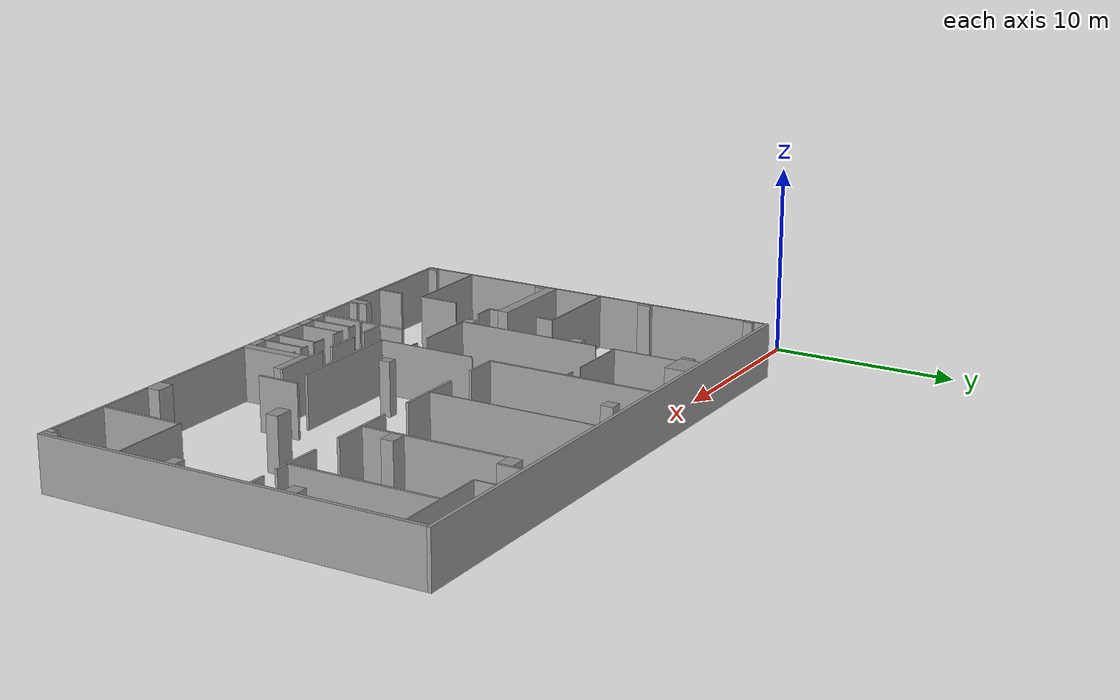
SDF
<?xml version="1.0" ?>
<sdf version="1.4">
  <model name="PalOfficePujades">
    <static>1</static>
    <link name="Wall_0">
      <collision name="Wall_0_Collision">
        <geometry>
          <box>
            <size>32.97000 0.21000 3.00000</size>
          </box>
        </geometry>
        <pose>16.90500 -0.45500 0 0 0 0.00000</pose>
      </collision>
      <visual name="Wall_0_Visual">
        <geometry>
          <box>
            <size>32.97000 0.21000 3.00000</size>
          </box>
        </geometry>
        <material>
          <script>
            <uri>file://media/materials/scripts/gazebo.material</uri>
            <name>Gazebo/Grey</name>
          </script>
        </material>
        <pose>16.90500 -0.45500 0 0 0 0.00000</pose>
      </visual>
    </link>
    <link name="Wall_1">
      <collision name="Wall_1_Collision">
        <geometry>
          <box>
            <size>0.14000 21.70000 3.00000</size>
          </box>
        </geometry>
        <pose>0.49000 -11.41000 0 0 0 0.00000</pose>
      </collision>
      <visual name="Wall_1_Visual">
        <geometry>
          <box>
            <size>0.14000 21.70000 3.00000</size>
          </box>
        </geometry>
        <material>
          <script>
            <uri>file://media/materials/scripts/gazebo.material</uri>
            <name>Gazebo/Grey</name>
          </script>
        </material>
        <pose>0.49000 -11.41000 0 0 0 0.00000</pose>
      </visual>
    </link>
    <link name="Wall_2">
      <collision name="Wall_2_Collision">
        <geometry>
          <box>
            <size>1.75000 1.19000 3.00000</size>
          </box>
        </geometry>
        <pose>8.99500 -1.15500 0 0 0 0.00000</pose>
      </collision>
      <visual name="Wall_2_Visual">
        <geometry>
          <box>
            <size>1.75000 1.19000 3.00000</size>
          </box>
        </geometry>
        <material>
          <script>
            <uri>file://media/materials/scripts/gazebo.material</uri>
            <name>Gazebo/Grey</name>
          </script>
        </material>
        <pose>8.99500 -1.15500 0 0 0 0.00000</pose>
      </visual>
    </link>
    <link name="Wall_3">
      <collision name="Wall_3_Collision">
        <geometry>
          <box>
            <size>0.14000 9.45000 3.00000</size>
          </box>
        </geometry>
        <pose>13.44000 -5.28500 0 0 0 0.00000</pose>
      </collision>
      <visual name="Wall_3_Visual">
        <geometry>
          <box>
            <size>0.14000 9.45000 3.00000</size>
          </box>
        </geometry>
        <material>
          <script>
            <uri>file://media/materials/scripts/gazebo.material</uri>
            <name>Gazebo/Grey</name>
          </script>
        </material>
        <pose>13.44000 -5.28500 0 0 0 0.00000</pose>
      </visual>
    </link>
    <link name="Wall_4">
      <collision name="Wall_4_Collision">
        <geometry>
          <box>
            <size>0.07000 9.45000 3.00000</size>
          </box>
        </geometry>
        <pose>19.07500 -5.28500 0 0 0 0.00000</pose>
      </collision>
      <visual name="Wall_4_Visual">
        <geometry>
          <box>
            <size>0.07000 9.45000 3.00000</size>
          </box>
        </geometry>
        <material>
          <script>
            <uri>file://media/materials/scripts/gazebo.material</uri>
            <name>Gazebo/Grey</name>
          </script>
        </material>
        <pose>19.07500 -5.28500 0 0 0 0.00000</pose>
      </visual>
    </link>
    <link name="Wall_5">
      <collision name="Wall_5_Collision">
        <geometry>
          <box>
            <size>0.14000 1.33000 3.00000</size>
          </box>
        </geometry>
        <pose>25.69000 -1.22500 0 0 0 0.00000</pose>
      </collision>
      <visual name="Wall_5_Visual">
        <geometry>
          <box>
            <size>0.14000 1.33000 3.00000</size>
          </box>
        </geometry>
        <material>
          <script>
            <uri>file://media/materials/scripts/gazebo.material</uri>
            <name>Gazebo/Grey</name>
          </script>
        </material>
        <pose>25.69000 -1.22500 0 0 0 0.00000</pose>
      </visual>
    </link>
    <link name="Wall_6">
      <collision name="Wall_6_Collision">
        <geometry>
          <box>
            <size>0.07000 1.19000 3.00000</size>
          </box>
        </geometry>
        <pose>27.89500 -1.15500 0 0 0 0.00000</pose>
      </collision>
      <visual name="Wall_6_Visual">
        <geometry>
          <box>
            <size>0.07000 1.19000 3.00000</size>
          </box>
        </geometry>
        <material>
          <script>
            <uri>file://media/materials/scripts/gazebo.material</uri>
            <name>Gazebo/Grey</name>
          </script>
        </material>
        <pose>27.89500 -1.15500 0 0 0 0.00000</pose>
      </visual>
    </link>
    <link name="Wall_7">
      <collision name="Wall_7_Collision">
        <geometry>
          <box>
            <size>0.21000 21.70000 3.00000</size>
          </box>
        </geometry>
        <pose>33.28500 -11.41000 0 0 0 0.00000</pose>
      </collision>
      <visual name="Wall_7_Visual">
        <geometry>
          <box>
            <size>0.21000 21.70000 3.00000</size>
          </box>
        </geometry>
        <material>
          <script>
            <uri>file://media/materials/scripts/gazebo.material</uri>
            <name>Gazebo/Grey</name>
          </script>
        </material>
        <pose>33.28500 -11.41000 0 0 0 0.00000</pose>
      </visual>
    </link>
    <link name="Wall_8">
      <collision name="Wall_8_Collision">
        <geometry>
          <box>
            <size>0.28000 0.70000 3.00000</size>
          </box>
        </geometry>
        <pose>7.98000 -1.40000 0 0 0 0.00000</pose>
      </collision>
      <visual name="Wall_8_Visual">
        <geometry>
          <box>
            <size>0.28000 0.70000 3.00000</size>
          </box>
        </geometry>
        <material>
          <script>
            <uri>file://media/materials/scripts/gazebo.material</uri>
            <name>Gazebo/Grey</name>
          </script>
        </material>
        <pose>7.98000 -1.40000 0 0 0 0.00000</pose>
      </visual>
    </link>
    <link name="Wall_9">
      <collision name="Wall_9_Collision">
        <geometry>
          <box>
            <size>0.70000 0.70000 3.00000</size>
          </box>
        </geometry>
        <pose>16.17000 -1.40000 0 0 0 0.00000</pose>
      </collision>
      <visual name="Wall_9_Visual">
        <geometry>
          <box>
            <size>0.70000 0.70000 3.00000</size>
          </box>
        </geometry>
        <material>
          <script>
            <uri>file://media/materials/scripts/gazebo.material</uri>
            <name>Gazebo/Grey</name>
          </script>
        </material>
        <pose>16.17000 -1.40000 0 0 0 0.00000</pose>
      </visual>
    </link>
    <link name="Wall_10">
      <collision name="Wall_10_Collision">
        <geometry>
          <box>
            <size>0.91000 0.77000 3.00000</size>
          </box>
        </geometry>
        <pose>25.16500 -1.50500 0 0 0 0.00000</pose>
      </collision>
      <visual name="Wall_10_Visual">
        <geometry>
          <box>
            <size>0.91000 0.77000 3.00000</size>
          </box>
        </geometry>
        <material>
          <script>
            <uri>file://media/materials/scripts/gazebo.material</uri>
            <name>Gazebo/Grey</name>
          </script>
        </material>
        <pose>25.16500 -1.50500 0 0 0 0.00000</pose>
      </visual>
    </link>
    <link name="Wall_11">
      <collision name="Wall_11_Collision">
        <geometry>
          <box>
            <size>0.21000 0.56000 3.00000</size>
          </box>
        </geometry>
        <pose>0.66500 -1.47000 0 0 0 0.00000</pose>
      </collision>
      <visual name="Wall_11_Visual">
        <geometry>
          <box>
            <size>0.21000 0.56000 3.00000</size>
          </box>
        </geometry>
        <material>
          <script>
            <uri>file://media/materials/scripts/gazebo.material</uri>
            <name>Gazebo/Grey</name>
          </script>
        </material>
        <pose>0.66500 -1.47000 0 0 0 0.00000</pose>
      </visual>
    </link>
    <link name="Wall_12">
      <collision name="Wall_12_Collision">
        <geometry>
          <box>
            <size>5.25000 0.07000 3.00000</size>
          </box>
        </geometry>
        <pose>30.55500 -1.71500 0 0 0 0.00000</pose>
      </collision>
      <visual name="Wall_12_Visual">
        <geometry>
          <box>
            <size>5.25000 0.07000 3.00000</size>
          </box>
        </geometry>
        <material>
          <script>
            <uri>file://media/materials/scripts/gazebo.material</uri>
            <name>Gazebo/Grey</name>
          </script>
        </material>
        <pose>30.55500 -1.71500 0 0 0 0.00000</pose>
      </visual>
    </link>
    <link name="Wall_13">
      <collision name="Wall_13_Collision">
        <geometry>
          <box>
            <size>0.07000 3.85000 3.00000</size>
          </box>
        </geometry>
        <pose>8.50500 -3.67500 0 0 0 0.00000</pose>
      </collision>
      <visual name="Wall_13_Visual">
        <geometry>
          <box>
            <size>0.07000 3.85000 3.00000</size>
          </box>
        </geometry>
        <material>
          <script>
            <uri>file://media/materials/scripts/gazebo.material</uri>
            <name>Gazebo/Grey</name>
          </script>
        </material>
        <pose>8.50500 -3.67500 0 0 0 0.00000</pose>
      </visual>
    </link>
    <link name="Wall_14">
      <collision name="Wall_14_Collision">
        <geometry>
          <box>
            <size>0.14000 8.26000 3.00000</size>
          </box>
        </geometry>
        <pose>30.52000 -5.88000 0 0 0 0.00000</pose>
      </collision>
      <visual name="Wall_14_Visual">
        <geometry>
          <box>
            <size>0.14000 8.26000 3.00000</size>
          </box>
        </geometry>
        <material>
          <script>
            <uri>file://media/materials/scripts/gazebo.material</uri>
            <name>Gazebo/Grey</name>
          </script>
        </material>
        <pose>30.52000 -5.88000 0 0 0 0.00000</pose>
      </visual>
    </link>
    <link name="Wall_15">
      <collision name="Wall_15_Collision">
        <geometry>
          <box>
            <size>0.14000 8.12000 3.00000</size>
          </box>
        </geometry>
        <pose>24.78000 -5.95000 0 0 0 0.00000</pose>
      </collision>
      <visual name="Wall_15_Visual">
        <geometry>
          <box>
            <size>0.14000 8.12000 3.00000</size>
          </box>
        </geometry>
        <material>
          <script>
            <uri>file://media/materials/scripts/gazebo.material</uri>
            <name>Gazebo/Grey</name>
          </script>
        </material>
        <pose>24.78000 -5.95000 0 0 0 0.00000</pose>
      </visual>
    </link>
    <link name="Wall_16">
      <collision name="Wall_16_Collision">
        <geometry>
          <box>
            <size>3.50000 0.07000 3.00000</size>
          </box>
        </geometry>
        <pose>10.29000 -5.42500 0 0 0 0.00000</pose>
      </collision>
      <visual name="Wall_16_Visual">
        <geometry>
          <box>
            <size>3.50000 0.07000 3.00000</size>
          </box>
        </geometry>
        <material>
          <script>
            <uri>file://media/materials/scripts/gazebo.material</uri>
            <name>Gazebo/Grey</name>
          </script>
        </material>
        <pose>10.29000 -5.42500 0 0 0 0.00000</pose>
      </visual>
    </link>
    <link name="Wall_17">
      <collision name="Wall_17_Collision">
        <geometry>
          <box>
            <size>0.56000 0.07000 3.00000</size>
          </box>
        </geometry>
        <pose>13.09000 -5.42500 0 0 0 0.00000</pose>
      </collision>
      <visual name="Wall_17_Visual">
        <geometry>
          <box>
            <size>0.56000 0.07000 3.00000</size>
          </box>
        </geometry>
        <material>
          <script>
            <uri>file://media/materials/scripts/gazebo.material</uri>
            <name>Gazebo/Grey</name>
          </script>
        </material>
        <pose>13.09000 -5.42500 0 0 0 0.00000</pose>
      </visual>
    </link>
    <link name="Wall_18">
      <collision name="Wall_18_Collision">
        <geometry>
          <box>
            <size>0.07000 8.33000 3.00000</size>
          </box>
        </geometry>
        <pose>8.50500 -10.67500 0 0 0 0.00000</pose>
      </collision>
      <visual name="Wall_18_Visual">
        <geometry>
          <box>
            <size>0.07000 8.33000 3.00000</size>
          </box>
        </geometry>
        <material>
          <script>
            <uri>file://media/materials/scripts/gazebo.material</uri>
            <name>Gazebo/Grey</name>
          </script>
        </material>
        <pose>8.50500 -10.67500 0 0 0 0.00000</pose>
      </visual>
    </link>
    <link name="Wall_19">
      <collision name="Wall_19_Collision">
        <geometry>
          <box>
            <size>0.28000 0.77000 3.00000</size>
          </box>
        </geometry>
        <pose>0.70000 -7.80500 0 0 0 0.00000</pose>
      </collision>
      <visual name="Wall_19_Visual">
        <geometry>
          <box>
            <size>0.28000 0.77000 3.00000</size>
          </box>
        </geometry>
        <material>
          <script>
            <uri>file://media/materials/scripts/gazebo.material</uri>
            <name>Gazebo/Grey</name>
          </script>
        </material>
        <pose>0.70000 -7.80500 0 0 0 0.00000</pose>
      </visual>
    </link>
    <link name="Wall_20">
      <collision name="Wall_20_Collision">
        <geometry>
          <box>
            <size>0.70000 0.70000 3.00000</size>
          </box>
        </geometry>
        <pose>32.83000 -7.77000 0 0 0 0.00000</pose>
      </collision>
      <visual name="Wall_20_Visual">
        <geometry>
          <box>
            <size>0.70000 0.70000 3.00000</size>
          </box>
        </geometry>
        <material>
          <script>
            <uri>file://media/materials/scripts/gazebo.material</uri>
            <name>Gazebo/Grey</name>
          </script>
        </material>
        <pose>32.83000 -7.77000 0 0 0 0.00000</pose>
      </visual>
    </link>
    <link name="Wall_21">
      <collision name="Wall_21_Collision">
        <geometry>
          <box>
            <size>0.56000 0.63000 3.00000</size>
          </box>
        </geometry>
        <pose>8.19000 -7.80500 0 0 0 0.00000</pose>
      </collision>
      <visual name="Wall_21_Visual">
        <geometry>
          <box>
            <size>0.56000 0.63000 3.00000</size>
          </box>
        </geometry>
        <material>
          <script>
            <uri>file://media/materials/scripts/gazebo.material</uri>
            <name>Gazebo/Grey</name>
          </script>
        </material>
        <pose>8.19000 -7.80500 0 0 0 0.00000</pose>
      </visual>
    </link>
    <link name="Wall_22">
      <collision name="Wall_22_Collision">
        <geometry>
          <box>
            <size>0.91000 0.70000 3.00000</size>
          </box>
        </geometry>
        <pose>25.30500 -7.84000 0 0 0 0.00000</pose>
      </collision>
      <visual name="Wall_22_Visual">
        <geometry>
          <box>
            <size>0.91000 0.70000 3.00000</size>
          </box>
        </geometry>
        <material>
          <script>
            <uri>file://media/materials/scripts/gazebo.material</uri>
            <name>Gazebo/Grey</name>
          </script>
        </material>
        <pose>25.30500 -7.84000 0 0 0 0.00000</pose>
      </visual>
    </link>
    <link name="Wall_23">
      <collision name="Wall_23_Collision">
        <geometry>
          <box>
            <size>1.82000 0.14000 3.00000</size>
          </box>
        </geometry>
        <pose>14.42000 -9.94000 0 0 0 0.00000</pose>
      </collision>
      <visual name="Wall_23_Visual">
        <geometry>
          <box>
            <size>1.82000 0.14000 3.00000</size>
          </box>
        </geometry>
        <material>
          <script>
            <uri>file://media/materials/scripts/gazebo.material</uri>
            <name>Gazebo/Grey</name>
          </script>
        </material>
        <pose>14.42000 -9.94000 0 0 0 0.00000</pose>
      </visual>
    </link>
    <link name="Wall_24">
      <collision name="Wall_24_Collision">
        <geometry>
          <box>
            <size>1.89000 0.14000 3.00000</size>
          </box>
        </geometry>
        <pose>18.09500 -9.94000 0 0 0 0.00000</pose>
      </collision>
      <visual name="Wall_24_Visual">
        <geometry>
          <box>
            <size>1.89000 0.14000 3.00000</size>
          </box>
        </geometry>
        <material>
          <script>
            <uri>file://media/materials/scripts/gazebo.material</uri>
            <name>Gazebo/Grey</name>
          </script>
        </material>
        <pose>18.09500 -9.94000 0 0 0 0.00000</pose>
      </visual>
    </link>
    <link name="Wall_25">
      <collision name="Wall_25_Collision">
        <geometry>
          <box>
            <size>1.89000 0.14000 3.00000</size>
          </box>
        </geometry>
        <pose>20.05500 -9.94000 0 0 0 0.00000</pose>
      </collision>
      <visual name="Wall_25_Visual">
        <geometry>
          <box>
            <size>1.89000 0.14000 3.00000</size>
          </box>
        </geometry>
        <material>
          <script>
            <uri>file://media/materials/scripts/gazebo.material</uri>
            <name>Gazebo/Grey</name>
          </script>
        </material>
        <pose>20.05500 -9.94000 0 0 0 0.00000</pose>
      </visual>
    </link>
    <link name="Wall_26">
      <collision name="Wall_26_Collision">
        <geometry>
          <box>
            <size>1.82000 0.14000 3.00000</size>
          </box>
        </geometry>
        <pose>23.80000 -9.94000 0 0 0 0.00000</pose>
      </collision>
      <visual name="Wall_26_Visual">
        <geometry>
          <box>
            <size>1.82000 0.14000 3.00000</size>
          </box>
        </geometry>
        <material>
          <script>
            <uri>file://media/materials/scripts/gazebo.material</uri>
            <name>Gazebo/Grey</name>
          </script>
        </material>
        <pose>23.80000 -9.94000 0 0 0 0.00000</pose>
      </visual>
    </link>
    <link name="Wall_27">
      <collision name="Wall_27_Collision">
        <geometry>
          <box>
            <size>1.82000 0.14000 3.00000</size>
          </box>
        </geometry>
        <pose>25.76000 -9.94000 0 0 0 0.00000</pose>
      </collision>
      <visual name="Wall_27_Visual">
        <geometry>
          <box>
            <size>1.82000 0.14000 3.00000</size>
          </box>
        </geometry>
        <material>
          <script>
            <uri>file://media/materials/scripts/gazebo.material</uri>
            <name>Gazebo/Grey</name>
          </script>
        </material>
        <pose>25.76000 -9.94000 0 0 0 0.00000</pose>
      </visual>
    </link>
    <link name="Wall_28">
      <collision name="Wall_28_Collision">
        <geometry>
          <box>
            <size>2.03000 0.14000 3.00000</size>
          </box>
        </geometry>
        <pose>29.43500 -9.94000 0 0 0 0.00000</pose>
      </collision>
      <visual name="Wall_28_Visual">
        <geometry>
          <box>
            <size>2.03000 0.14000 3.00000</size>
          </box>
        </geometry>
        <material>
          <script>
            <uri>file://media/materials/scripts/gazebo.material</uri>
            <name>Gazebo/Grey</name>
          </script>
        </material>
        <pose>29.43500 -9.94000 0 0 0 0.00000</pose>
      </visual>
    </link>
    <link name="Wall_29">
      <collision name="Wall_29_Collision">
        <geometry>
          <box>
            <size>0.77000 0.14000 3.00000</size>
          </box>
        </geometry>
        <pose>30.97500 -9.94000 0 0 0 0.00000</pose>
      </collision>
      <visual name="Wall_29_Visual">
        <geometry>
          <box>
            <size>0.77000 0.14000 3.00000</size>
          </box>
        </geometry>
        <material>
          <script>
            <uri>file://media/materials/scripts/gazebo.material</uri>
            <name>Gazebo/Grey</name>
          </script>
        </material>
        <pose>30.97500 -9.94000 0 0 0 0.00000</pose>
      </visual>
    </link>
    <link name="Wall_30">
      <collision name="Wall_30_Collision">
        <geometry>
          <box>
            <size>0.91000 0.14000 3.00000</size>
          </box>
        </geometry>
        <pose>32.72500 -9.94000 0 0 0 0.00000</pose>
      </collision>
      <visual name="Wall_30_Visual">
        <geometry>
          <box>
            <size>0.91000 0.14000 3.00000</size>
          </box>
        </geometry>
        <material>
          <script>
            <uri>file://media/materials/scripts/gazebo.material</uri>
            <name>Gazebo/Grey</name>
          </script>
        </material>
        <pose>32.72500 -9.94000 0 0 0 0.00000</pose>
      </visual>
    </link>
    <link name="Wall_31">
      <collision name="Wall_31_Collision">
        <geometry>
          <box>
            <size>5.25000 0.07000 3.00000</size>
          </box>
        </geometry>
        <pose>3.18500 -10.74500 0 0 0 0.00000</pose>
      </collision>
      <visual name="Wall_31_Visual">
        <geometry>
          <box>
            <size>5.25000 0.07000 3.00000</size>
          </box>
        </geometry>
        <material>
          <script>
            <uri>file://media/materials/scripts/gazebo.material</uri>
            <name>Gazebo/Grey</name>
          </script>
        </material>
        <pose>3.18500 -10.74500 0 0 0 0.00000</pose>
      </visual>
    </link>
    <link name="Wall_32">
      <collision name="Wall_32_Collision">
        <geometry>
          <box>
            <size>0.14000 0.98000 3.00000</size>
          </box>
        </geometry>
        <pose>5.74000 -11.27000 0 0 0 0.00000</pose>
      </collision>
      <visual name="Wall_32_Visual">
        <geometry>
          <box>
            <size>0.14000 0.98000 3.00000</size>
          </box>
        </geometry>
        <material>
          <script>
            <uri>file://media/materials/scripts/gazebo.material</uri>
            <name>Gazebo/Grey</name>
          </script>
        </material>
        <pose>5.74000 -11.27000 0 0 0 0.00000</pose>
      </visual>
    </link>
    <link name="Wall_33">
      <collision name="Wall_33_Collision">
        <geometry>
          <box>
            <size>0.07000 5.74000 3.00000</size>
          </box>
        </geometry>
        <pose>13.40500 -13.93000 0 0 0 0.00000</pose>
      </collision>
      <visual name="Wall_33_Visual">
        <geometry>
          <box>
            <size>0.07000 5.74000 3.00000</size>
          </box>
        </geometry>
        <material>
          <script>
            <uri>file://media/materials/scripts/gazebo.material</uri>
            <name>Gazebo/Grey</name>
          </script>
        </material>
        <pose>13.40500 -13.93000 0 0 0 0.00000</pose>
      </visual>
    </link>
    <link name="Wall_34">
      <collision name="Wall_34_Collision">
        <geometry>
          <box>
            <size>5.25000 0.63000 3.00000</size>
          </box>
        </geometry>
        <pose>3.18500 -13.89500 0 0 0 0.00000</pose>
      </collision>
      <visual name="Wall_34_Visual">
        <geometry>
          <box>
            <size>5.25000 0.63000 3.00000</size>
          </box>
        </geometry>
        <material>
          <script>
            <uri>file://media/materials/scripts/gazebo.material</uri>
            <name>Gazebo/Grey</name>
          </script>
        </material>
        <pose>3.18500 -13.89500 0 0 0 0.00000</pose>
      </visual>
    </link>
    <link name="Wall_35">
      <collision name="Wall_35_Collision">
        <geometry>
          <box>
            <size>1.05000 0.70000 3.00000</size>
          </box>
        </geometry>
        <pose>25.23500 -14.49000 0 0 0 0.00000</pose>
      </collision>
      <visual name="Wall_35_Visual">
        <geometry>
          <box>
            <size>1.05000 0.70000 3.00000</size>
          </box>
        </geometry>
        <material>
          <script>
            <uri>file://media/materials/scripts/gazebo.material</uri>
            <name>Gazebo/Grey</name>
          </script>
        </material>
        <pose>25.23500 -14.49000 0 0 0 0.00000</pose>
      </visual>
    </link>
    <link name="Wall_36">
      <collision name="Wall_36_Collision">
        <geometry>
          <box>
            <size>0.28000 0.63000 3.00000</size>
          </box>
        </geometry>
        <pose>0.70000 -14.52500 0 0 0 0.00000</pose>
      </collision>
      <visual name="Wall_36_Visual">
        <geometry>
          <box>
            <size>0.28000 0.63000 3.00000</size>
          </box>
        </geometry>
        <material>
          <script>
            <uri>file://media/materials/scripts/gazebo.material</uri>
            <name>Gazebo/Grey</name>
          </script>
        </material>
        <pose>0.70000 -14.52500 0 0 0 0.00000</pose>
      </visual>
    </link>
    <link name="Wall_37">
      <collision name="Wall_37_Collision">
        <geometry>
          <box>
            <size>0.14000 0.63000 3.00000</size>
          </box>
        </geometry>
        <pose>5.74000 -14.52500 0 0 0 0.00000</pose>
      </collision>
      <visual name="Wall_37_Visual">
        <geometry>
          <box>
            <size>0.14000 0.63000 3.00000</size>
          </box>
        </geometry>
        <material>
          <script>
            <uri>file://media/materials/scripts/gazebo.material</uri>
            <name>Gazebo/Grey</name>
          </script>
        </material>
        <pose>5.74000 -14.52500 0 0 0 0.00000</pose>
      </visual>
    </link>
    <link name="Wall_38">
      <collision name="Wall_38_Collision">
        <geometry>
          <box>
            <size>0.56000 0.63000 3.00000</size>
          </box>
        </geometry>
        <pose>8.19000 -14.52500 0 0 0 0.00000</pose>
      </collision>
      <visual name="Wall_38_Visual">
        <geometry>
          <box>
            <size>0.56000 0.63000 3.00000</size>
          </box>
        </geometry>
        <material>
          <script>
            <uri>file://media/materials/scripts/gazebo.material</uri>
            <name>Gazebo/Grey</name>
          </script>
        </material>
        <pose>8.19000 -14.52500 0 0 0 0.00000</pose>
      </visual>
    </link>
    <link name="Wall_39">
      <collision name="Wall_39_Collision">
        <geometry>
          <box>
            <size>0.56000 0.63000 3.00000</size>
          </box>
        </geometry>
        <pose>16.03000 -14.52500 0 0 0 0.00000</pose>
      </collision>
      <visual name="Wall_39_Visual">
        <geometry>
          <box>
            <size>0.56000 0.63000 3.00000</size>
          </box>
        </geometry>
        <material>
          <script>
            <uri>file://media/materials/scripts/gazebo.material</uri>
            <name>Gazebo/Grey</name>
          </script>
        </material>
        <pose>16.03000 -14.52500 0 0 0 0.00000</pose>
      </visual>
    </link>
    <link name="Wall_40">
      <collision name="Wall_40_Collision">
        <geometry>
          <box>
            <size>0.70000 0.63000 3.00000</size>
          </box>
        </geometry>
        <pose>32.83000 -14.52500 0 0 0 0.00000</pose>
      </collision>
      <visual name="Wall_40_Visual">
        <geometry>
          <box>
            <size>0.70000 0.63000 3.00000</size>
          </box>
        </geometry>
        <material>
          <script>
            <uri>file://media/materials/scripts/gazebo.material</uri>
            <name>Gazebo/Grey</name>
          </script>
        </material>
        <pose>32.83000 -14.52500 0 0 0 0.00000</pose>
      </visual>
    </link>
    <link name="Wall_41">
      <collision name="Wall_41_Collision">
        <geometry>
          <box>
            <size>1.12000 0.07000 3.00000</size>
          </box>
        </geometry>
        <pose>6.37000 -14.80500 0 0 0 0.00000</pose>
      </collision>
      <visual name="Wall_41_Visual">
        <geometry>
          <box>
            <size>1.12000 0.07000 3.00000</size>
          </box>
        </geometry>
        <material>
          <script>
            <uri>file://media/materials/scripts/gazebo.material</uri>
            <name>Gazebo/Grey</name>
          </script>
        </material>
        <pose>6.37000 -14.80500 0 0 0 0.00000</pose>
      </visual>
    </link>
    <link name="Wall_42">
      <collision name="Wall_42_Collision">
        <geometry>
          <box>
            <size>0.07000 0.07000 3.00000</size>
          </box>
        </geometry>
        <pose>7.87500 -14.80500 0 0 0 0.00000</pose>
      </collision>
      <visual name="Wall_42_Visual">
        <geometry>
          <box>
            <size>0.07000 0.07000 3.00000</size>
          </box>
        </geometry>
        <material>
          <script>
            <uri>file://media/materials/scripts/gazebo.material</uri>
            <name>Gazebo/Grey</name>
          </script>
        </material>
        <pose>7.87500 -14.80500 0 0 0 0.00000</pose>
      </visual>
    </link>
    <link name="Wall_43">
      <collision name="Wall_43_Collision">
        <geometry>
          <box>
            <size>3.43000 0.07000 3.00000</size>
          </box>
        </geometry>
        <pose>10.25500 -14.80500 0 0 0 0.00000</pose>
      </collision>
      <visual name="Wall_43_Visual">
        <geometry>
          <box>
            <size>3.43000 0.07000 3.00000</size>
          </box>
        </geometry>
        <material>
          <script>
            <uri>file://media/materials/scripts/gazebo.material</uri>
            <name>Gazebo/Grey</name>
          </script>
        </material>
        <pose>10.25500 -14.80500 0 0 0 0.00000</pose>
      </visual>
    </link>
    <link name="Wall_44">
      <collision name="Wall_44_Collision">
        <geometry>
          <box>
            <size>0.49000 0.07000 3.00000</size>
          </box>
        </geometry>
        <pose>13.12500 -14.80500 0 0 0 0.00000</pose>
      </collision>
      <visual name="Wall_44_Visual">
        <geometry>
          <box>
            <size>0.49000 0.07000 3.00000</size>
          </box>
        </geometry>
        <material>
          <script>
            <uri>file://media/materials/scripts/gazebo.material</uri>
            <name>Gazebo/Grey</name>
          </script>
        </material>
        <pose>13.12500 -14.80500 0 0 0 0.00000</pose>
      </visual>
    </link>
    <link name="Wall_45">
      <collision name="Wall_45_Collision">
        <geometry>
          <box>
            <size>0.14000 2.38000 3.00000</size>
          </box>
        </geometry>
        <pose>21.35000 -17.43000 0 0 0 0.00000</pose>
      </collision>
      <visual name="Wall_45_Visual">
        <geometry>
          <box>
            <size>0.14000 2.38000 3.00000</size>
          </box>
        </geometry>
        <material>
          <script>
            <uri>file://media/materials/scripts/gazebo.material</uri>
            <name>Gazebo/Grey</name>
          </script>
        </material>
        <pose>21.35000 -17.43000 0 0 0 0.00000</pose>
      </visual>
    </link>
    <link name="Wall_46">
      <collision name="Wall_46_Collision">
        <geometry>
          <box>
            <size>6.58000 0.14000 3.00000</size>
          </box>
        </geometry>
        <pose>16.73000 -16.73000 0 0 0 0.00000</pose>
      </collision>
      <visual name="Wall_46_Visual">
        <geometry>
          <box>
            <size>6.58000 0.14000 3.00000</size>
          </box>
        </geometry>
        <material>
          <script>
            <uri>file://media/materials/scripts/gazebo.material</uri>
            <name>Gazebo/Grey</name>
          </script>
        </material>
        <pose>16.73000 -16.73000 0 0 0 0.00000</pose>
      </visual>
    </link>
    <link name="Wall_47">
      <collision name="Wall_47_Collision">
        <geometry>
          <box>
            <size>0.21000 5.46000 3.00000</size>
          </box>
        </geometry>
        <pose>11.30500 -19.53000 0 0 0 0.00000</pose>
      </collision>
      <visual name="Wall_47_Visual">
        <geometry>
          <box>
            <size>0.21000 5.46000 3.00000</size>
          </box>
        </geometry>
        <material>
          <script>
            <uri>file://media/materials/scripts/gazebo.material</uri>
            <name>Gazebo/Grey</name>
          </script>
        </material>
        <pose>11.30500 -19.53000 0 0 0 0.00000</pose>
      </visual>
    </link>
    <link name="Wall_48">
      <collision name="Wall_48_Collision">
        <geometry>
          <box>
            <size>0.07000 2.31000 3.00000</size>
          </box>
        </geometry>
        <pose>5.70500 -18.16500 0 0 0 0.00000</pose>
      </collision>
      <visual name="Wall_48_Visual">
        <geometry>
          <box>
            <size>0.07000 2.31000 3.00000</size>
          </box>
        </geometry>
        <material>
          <script>
            <uri>file://media/materials/scripts/gazebo.material</uri>
            <name>Gazebo/Grey</name>
          </script>
        </material>
        <pose>5.70500 -18.16500 0 0 0 0.00000</pose>
      </visual>
    </link>
    <link name="Wall_49">
      <collision name="Wall_49_Collision">
        <geometry>
          <box>
            <size>4.34000 0.07000 3.00000</size>
          </box>
        </geometry>
        <pose>31.01000 -17.46500 0 0 0 0.00000</pose>
      </collision>
      <visual name="Wall_49_Visual">
        <geometry>
          <box>
            <size>4.34000 0.07000 3.00000</size>
          </box>
        </geometry>
        <material>
          <script>
            <uri>file://media/materials/scripts/gazebo.material</uri>
            <name>Gazebo/Grey</name>
          </script>
        </material>
        <pose>31.01000 -17.46500 0 0 0 0.00000</pose>
      </visual>
    </link>
    <link name="Wall_50">
      <collision name="Wall_50_Collision">
        <geometry>
          <box>
            <size>0.14000 4.76000 3.00000</size>
          </box>
        </geometry>
        <pose>28.91000 -19.88000 0 0 0 0.00000</pose>
      </collision>
      <visual name="Wall_50_Visual">
        <geometry>
          <box>
            <size>0.14000 4.76000 3.00000</size>
          </box>
        </geometry>
        <material>
          <script>
            <uri>file://media/materials/scripts/gazebo.material</uri>
            <name>Gazebo/Grey</name>
          </script>
        </material>
        <pose>28.91000 -19.88000 0 0 0 0.00000</pose>
      </visual>
    </link>
    <link name="Wall_51">
      <collision name="Wall_51_Collision">
        <geometry>
          <box>
            <size>1.47000 0.14000 3.00000</size>
          </box>
        </geometry>
        <pose>12.14500 -18.27000 0 0 0 0.00000</pose>
      </collision>
      <visual name="Wall_51_Visual">
        <geometry>
          <box>
            <size>1.47000 0.14000 3.00000</size>
          </box>
        </geometry>
        <material>
          <script>
            <uri>file://media/materials/scripts/gazebo.material</uri>
            <name>Gazebo/Grey</name>
          </script>
        </material>
        <pose>12.14500 -18.27000 0 0 0 0.00000</pose>
      </visual>
    </link>
    <link name="Wall_52">
      <collision name="Wall_52_Collision">
        <geometry>
          <box>
            <size>1.96000 0.14000 3.00000</size>
          </box>
        </geometry>
        <pose>14.77000 -18.27000 0 0 0 0.00000</pose>
      </collision>
      <visual name="Wall_52_Visual">
        <geometry>
          <box>
            <size>1.96000 0.14000 3.00000</size>
          </box>
        </geometry>
        <material>
          <script>
            <uri>file://media/materials/scripts/gazebo.material</uri>
            <name>Gazebo/Grey</name>
          </script>
        </material>
        <pose>14.77000 -18.27000 0 0 0 0.00000</pose>
      </visual>
    </link>
    <link name="Wall_53">
      <collision name="Wall_53_Collision">
        <geometry>
          <box>
            <size>3.43000 0.14000 3.00000</size>
          </box>
        </geometry>
        <pose>18.30500 -18.27000 0 0 0 0.00000</pose>
      </collision>
      <visual name="Wall_53_Visual">
        <geometry>
          <box>
            <size>3.43000 0.14000 3.00000</size>
          </box>
        </geometry>
        <material>
          <script>
            <uri>file://media/materials/scripts/gazebo.material</uri>
            <name>Gazebo/Grey</name>
          </script>
        </material>
        <pose>18.30500 -18.27000 0 0 0 0.00000</pose>
      </visual>
    </link>
    <link name="Wall_54">
      <collision name="Wall_54_Collision">
        <geometry>
          <box>
            <size>2.45000 0.42000 3.00000</size>
          </box>
        </geometry>
        <pose>18.79500 -18.55000 0 0 0 0.00000</pose>
      </collision>
      <visual name="Wall_54_Visual">
        <geometry>
          <box>
            <size>2.45000 0.42000 3.00000</size>
          </box>
        </geometry>
        <material>
          <script>
            <uri>file://media/materials/scripts/gazebo.material</uri>
            <name>Gazebo/Grey</name>
          </script>
        </material>
        <pose>18.79500 -18.55000 0 0 0 0.00000</pose>
      </visual>
    </link>
    <link name="Wall_55">
      <collision name="Wall_55_Collision">
        <geometry>
          <box>
            <size>0.56000 3.50000 3.00000</size>
          </box>
        </geometry>
        <pose>17.85000 -20.51000 0 0 0 0.00000</pose>
      </collision>
      <visual name="Wall_55_Visual">
        <geometry>
          <box>
            <size>0.56000 3.50000 3.00000</size>
          </box>
        </geometry>
        <material>
          <script>
            <uri>file://media/materials/scripts/gazebo.material</uri>
            <name>Gazebo/Grey</name>
          </script>
        </material>
        <pose>17.85000 -20.51000 0 0 0 0.00000</pose>
      </visual>
    </link>
    <link name="Wall_56">
      <collision name="Wall_56_Collision">
        <geometry>
          <box>
            <size>5.11000 0.07000 3.00000</size>
          </box>
        </geometry>
        <pose>3.11500 -19.28500 0 0 0 0.00000</pose>
      </collision>
      <visual name="Wall_56_Visual">
        <geometry>
          <box>
            <size>5.11000 0.07000 3.00000</size>
          </box>
        </geometry>
        <material>
          <script>
            <uri>file://media/materials/scripts/gazebo.material</uri>
            <name>Gazebo/Grey</name>
          </script>
        </material>
        <pose>3.11500 -19.28500 0 0 0 0.00000</pose>
      </visual>
    </link>
    <link name="Wall_57">
      <collision name="Wall_57_Collision">
        <geometry>
          <box>
            <size>0.14000 0.07000 3.00000</size>
          </box>
        </geometry>
        <pose>11.48000 -19.42500 0 0 0 0.00000</pose>
      </collision>
      <visual name="Wall_57_Visual">
        <geometry>
          <box>
            <size>0.14000 0.07000 3.00000</size>
          </box>
        </geometry>
        <material>
          <script>
            <uri>file://media/materials/scripts/gazebo.material</uri>
            <name>Gazebo/Grey</name>
          </script>
        </material>
        <pose>11.48000 -19.42500 0 0 0 0.00000</pose>
      </visual>
    </link>
    <link name="Wall_58">
      <collision name="Wall_58_Collision">
        <geometry>
          <box>
            <size>0.56000 0.07000 3.00000</size>
          </box>
        </geometry>
        <pose>12.32000 -19.42500 0 0 0 0.00000</pose>
      </collision>
      <visual name="Wall_58_Visual">
        <geometry>
          <box>
            <size>0.56000 0.07000 3.00000</size>
          </box>
        </geometry>
        <material>
          <script>
            <uri>file://media/materials/scripts/gazebo.material</uri>
            <name>Gazebo/Grey</name>
          </script>
        </material>
        <pose>12.32000 -19.42500 0 0 0 0.00000</pose>
      </visual>
    </link>
    <link name="Wall_59">
      <collision name="Wall_59_Collision">
        <geometry>
          <box>
            <size>0.84000 0.07000 3.00000</size>
          </box>
        </geometry>
        <pose>13.58000 -19.42500 0 0 0 0.00000</pose>
      </collision>
      <visual name="Wall_59_Visual">
        <geometry>
          <box>
            <size>0.84000 0.07000 3.00000</size>
          </box>
        </geometry>
        <material>
          <script>
            <uri>file://media/materials/scripts/gazebo.material</uri>
            <name>Gazebo/Grey</name>
          </script>
        </material>
        <pose>13.58000 -19.42500 0 0 0 0.00000</pose>
      </visual>
    </link>
    <link name="Wall_60">
      <collision name="Wall_60_Collision">
        <geometry>
          <box>
            <size>0.91000 0.07000 3.00000</size>
          </box>
        </geometry>
        <pose>15.29500 -19.42500 0 0 0 0.00000</pose>
      </collision>
      <visual name="Wall_60_Visual">
        <geometry>
          <box>
            <size>0.91000 0.07000 3.00000</size>
          </box>
        </geometry>
        <material>
          <script>
            <uri>file://media/materials/scripts/gazebo.material</uri>
            <name>Gazebo/Grey</name>
          </script>
        </material>
        <pose>15.29500 -19.42500 0 0 0 0.00000</pose>
      </visual>
    </link>
    <link name="Wall_61">
      <collision name="Wall_61_Collision">
        <geometry>
          <box>
            <size>0.63000 0.07000 3.00000</size>
          </box>
        </geometry>
        <pose>16.55500 -19.42500 0 0 0 0.00000</pose>
      </collision>
      <visual name="Wall_61_Visual">
        <geometry>
          <box>
            <size>0.63000 0.07000 3.00000</size>
          </box>
        </geometry>
        <material>
          <script>
            <uri>file://media/materials/scripts/gazebo.material</uri>
            <name>Gazebo/Grey</name>
          </script>
        </material>
        <pose>16.55500 -19.42500 0 0 0 0.00000</pose>
      </visual>
    </link>
    <link name="Wall_62">
      <collision name="Wall_62_Collision">
        <geometry>
          <box>
            <size>0.21000 0.07000 3.00000</size>
          </box>
        </geometry>
        <pose>17.46500 -19.42500 0 0 0 0.00000</pose>
      </collision>
      <visual name="Wall_62_Visual">
        <geometry>
          <box>
            <size>0.21000 0.07000 3.00000</size>
          </box>
        </geometry>
        <material>
          <script>
            <uri>file://media/materials/scripts/gazebo.material</uri>
            <name>Gazebo/Grey</name>
          </script>
        </material>
        <pose>17.46500 -19.42500 0 0 0 0.00000</pose>
      </visual>
    </link>
    <link name="Wall_63">
      <collision name="Wall_63_Collision">
        <geometry>
          <box>
            <size>0.14000 2.80000 3.00000</size>
          </box>
        </geometry>
        <pose>12.39000 -20.86000 0 0 0 0.00000</pose>
      </collision>
      <visual name="Wall_63_Visual">
        <geometry>
          <box>
            <size>0.14000 2.80000 3.00000</size>
          </box>
        </geometry>
        <material>
          <script>
            <uri>file://media/materials/scripts/gazebo.material</uri>
            <name>Gazebo/Grey</name>
          </script>
        </material>
        <pose>12.39000 -20.86000 0 0 0 0.00000</pose>
      </visual>
    </link>
    <link name="Wall_64">
      <collision name="Wall_64_Collision">
        <geometry>
          <box>
            <size>0.07000 2.80000 3.00000</size>
          </box>
        </geometry>
        <pose>13.40500 -20.86000 0 0 0 0.00000</pose>
      </collision>
      <visual name="Wall_64_Visual">
        <geometry>
          <box>
            <size>0.07000 2.80000 3.00000</size>
          </box>
        </geometry>
        <material>
          <script>
            <uri>file://media/materials/scripts/gazebo.material</uri>
            <name>Gazebo/Grey</name>
          </script>
        </material>
        <pose>13.40500 -20.86000 0 0 0 0.00000</pose>
      </visual>
    </link>
    <link name="Wall_65">
      <collision name="Wall_65_Collision">
        <geometry>
          <box>
            <size>0.07000 2.80000 3.00000</size>
          </box>
        </geometry>
        <pose>15.50500 -20.86000 0 0 0 0.00000</pose>
      </collision>
      <visual name="Wall_65_Visual">
        <geometry>
          <box>
            <size>0.07000 2.80000 3.00000</size>
          </box>
        </geometry>
        <material>
          <script>
            <uri>file://media/materials/scripts/gazebo.material</uri>
            <name>Gazebo/Grey</name>
          </script>
        </material>
        <pose>15.50500 -20.86000 0 0 0 0.00000</pose>
      </visual>
    </link>
    <link name="Wall_66">
      <collision name="Wall_66_Collision">
        <geometry>
          <box>
            <size>0.14000 2.80000 3.00000</size>
          </box>
        </geometry>
        <pose>16.59000 -20.86000 0 0 0 0.00000</pose>
      </collision>
      <visual name="Wall_66_Visual">
        <geometry>
          <box>
            <size>0.14000 2.80000 3.00000</size>
          </box>
        </geometry>
        <material>
          <script>
            <uri>file://media/materials/scripts/gazebo.material</uri>
            <name>Gazebo/Grey</name>
          </script>
        </material>
        <pose>16.59000 -20.86000 0 0 0 0.00000</pose>
      </visual>
    </link>
    <link name="Wall_67">
      <collision name="Wall_67_Collision">
        <geometry>
          <box>
            <size>0.14000 1.61000 3.00000</size>
          </box>
        </geometry>
        <pose>5.74000 -21.45500 0 0 0 0.00000</pose>
      </collision>
      <visual name="Wall_67_Visual">
        <geometry>
          <box>
            <size>0.14000 1.61000 3.00000</size>
          </box>
        </geometry>
        <material>
          <script>
            <uri>file://media/materials/scripts/gazebo.material</uri>
            <name>Gazebo/Grey</name>
          </script>
        </material>
        <pose>5.74000 -21.45500 0 0 0 0.00000</pose>
      </visual>
    </link>
    <link name="Wall_68">
      <collision name="Wall_68_Collision">
        <geometry>
          <box>
            <size>0.49000 1.12000 3.00000</size>
          </box>
        </geometry>
        <pose>8.29500 -21.70000 0 0 0 0.00000</pose>
      </collision>
      <visual name="Wall_68_Visual">
        <geometry>
          <box>
            <size>0.49000 1.12000 3.00000</size>
          </box>
        </geometry>
        <material>
          <script>
            <uri>file://media/materials/scripts/gazebo.material</uri>
            <name>Gazebo/Grey</name>
          </script>
        </material>
        <pose>8.29500 -21.70000 0 0 0 0.00000</pose>
      </visual>
    </link>
    <link name="Wall_69">
      <collision name="Wall_69_Collision">
        <geometry>
          <box>
            <size>0.28000 0.98000 3.00000</size>
          </box>
        </geometry>
        <pose>33.04000 -21.77000 0 0 0 0.00000</pose>
      </collision>
      <visual name="Wall_69_Visual">
        <geometry>
          <box>
            <size>0.28000 0.98000 3.00000</size>
          </box>
        </geometry>
        <material>
          <script>
            <uri>file://media/materials/scripts/gazebo.material</uri>
            <name>Gazebo/Grey</name>
          </script>
        </material>
        <pose>33.04000 -21.77000 0 0 0 0.00000</pose>
      </visual>
    </link>
    <link name="Wall_70">
      <collision name="Wall_70_Collision">
        <geometry>
          <box>
            <size>1.05000 0.84000 3.00000</size>
          </box>
        </geometry>
        <pose>25.23500 -21.84000 0 0 0 0.00000</pose>
      </collision>
      <visual name="Wall_70_Visual">
        <geometry>
          <box>
            <size>1.05000 0.84000 3.00000</size>
          </box>
        </geometry>
        <material>
          <script>
            <uri>file://media/materials/scripts/gazebo.material</uri>
            <name>Gazebo/Grey</name>
          </script>
        </material>
        <pose>25.23500 -21.84000 0 0 0 0.00000</pose>
      </visual>
    </link>
    <link name="Wall_71">
      <collision name="Wall_71_Collision">
        <geometry>
          <box>
            <size>0.14000 0.77000 3.00000</size>
          </box>
        </geometry>
        <pose>7.98000 -21.87500 0 0 0 0.00000</pose>
      </collision>
      <visual name="Wall_71_Visual">
        <geometry>
          <box>
            <size>0.14000 0.77000 3.00000</size>
          </box>
        </geometry>
        <material>
          <script>
            <uri>file://media/materials/scripts/gazebo.material</uri>
            <name>Gazebo/Grey</name>
          </script>
        </material>
        <pose>7.98000 -21.87500 0 0 0 0.00000</pose>
      </visual>
    </link>
    <link name="Wall_72">
      <collision name="Wall_72_Collision">
        <geometry>
          <box>
            <size>0.28000 0.70000 3.00000</size>
          </box>
        </geometry>
        <pose>0.70000 -21.91000 0 0 0 0.00000</pose>
      </collision>
      <visual name="Wall_72_Visual">
        <geometry>
          <box>
            <size>0.28000 0.70000 3.00000</size>
          </box>
        </geometry>
        <material>
          <script>
            <uri>file://media/materials/scripts/gazebo.material</uri>
            <name>Gazebo/Grey</name>
          </script>
        </material>
        <pose>0.70000 -21.91000 0 0 0 0.00000</pose>
      </visual>
    </link>
    <link name="Wall_73">
      <collision name="Wall_73_Collision">
        <geometry>
          <box>
            <size>0.21000 0.63000 3.00000</size>
          </box>
        </geometry>
        <pose>8.64500 -21.94500 0 0 0 0.00000</pose>
      </collision>
      <visual name="Wall_73_Visual">
        <geometry>
          <box>
            <size>0.21000 0.63000 3.00000</size>
          </box>
        </geometry>
        <material>
          <script>
            <uri>file://media/materials/scripts/gazebo.material</uri>
            <name>Gazebo/Grey</name>
          </script>
        </material>
        <pose>8.64500 -21.94500 0 0 0 0.00000</pose>
      </visual>
    </link>
    <link name="Wall_74">
      <collision name="Wall_74_Collision">
        <geometry>
          <box>
            <size>0.35000 0.49000 3.00000</size>
          </box>
        </geometry>
        <pose>32.72500 -22.01500 0 0 0 0.00000</pose>
      </collision>
      <visual name="Wall_74_Visual">
        <geometry>
          <box>
            <size>0.35000 0.49000 3.00000</size>
          </box>
        </geometry>
        <material>
          <script>
            <uri>file://media/materials/scripts/gazebo.material</uri>
            <name>Gazebo/Grey</name>
          </script>
        </material>
        <pose>32.72500 -22.01500 0 0 0 0.00000</pose>
      </visual>
    </link>
    <link name="Wall_75">
      <collision name="Wall_75_Collision">
        <geometry>
          <box>
            <size>0.91000 0.42000 3.00000</size>
          </box>
        </geometry>
        <pose>11.86500 -22.05000 0 0 0 0.00000</pose>
      </collision>
      <visual name="Wall_75_Visual">
        <geometry>
          <box>
            <size>0.91000 0.42000 3.00000</size>
          </box>
        </geometry>
        <material>
          <script>
            <uri>file://media/materials/scripts/gazebo.material</uri>
            <name>Gazebo/Grey</name>
          </script>
        </material>
        <pose>11.86500 -22.05000 0 0 0 0.00000</pose>
      </visual>
    </link>
    <link name="Wall_76">
      <collision name="Wall_76_Collision">
        <geometry>
          <box>
            <size>0.91000 0.42000 3.00000</size>
          </box>
        </geometry>
        <pose>12.91500 -22.05000 0 0 0 0.00000</pose>
      </collision>
      <visual name="Wall_76_Visual">
        <geometry>
          <box>
            <size>0.91000 0.42000 3.00000</size>
          </box>
        </geometry>
        <material>
          <script>
            <uri>file://media/materials/scripts/gazebo.material</uri>
            <name>Gazebo/Grey</name>
          </script>
        </material>
        <pose>12.91500 -22.05000 0 0 0 0.00000</pose>
      </visual>
    </link>
    <link name="Wall_77">
      <collision name="Wall_77_Collision">
        <geometry>
          <box>
            <size>2.03000 0.42000 3.00000</size>
          </box>
        </geometry>
        <pose>14.45500 -22.05000 0 0 0 0.00000</pose>
      </collision>
      <visual name="Wall_77_Visual">
        <geometry>
          <box>
            <size>2.03000 0.42000 3.00000</size>
          </box>
        </geometry>
        <material>
          <script>
            <uri>file://media/materials/scripts/gazebo.material</uri>
            <name>Gazebo/Grey</name>
          </script>
        </material>
        <pose>14.45500 -22.05000 0 0 0 0.00000</pose>
      </visual>
    </link>
    <link name="Wall_78">
      <collision name="Wall_78_Collision">
        <geometry>
          <box>
            <size>0.98000 0.42000 3.00000</size>
          </box>
        </geometry>
        <pose>16.03000 -22.05000 0 0 0 0.00000</pose>
      </collision>
      <visual name="Wall_78_Visual">
        <geometry>
          <box>
            <size>0.98000 0.42000 3.00000</size>
          </box>
        </geometry>
        <material>
          <script>
            <uri>file://media/materials/scripts/gazebo.material</uri>
            <name>Gazebo/Grey</name>
          </script>
        </material>
        <pose>16.03000 -22.05000 0 0 0 0.00000</pose>
      </visual>
    </link>
    <link name="Wall_79">
      <collision name="Wall_79_Collision">
        <geometry>
          <box>
            <size>0.91000 0.42000 3.00000</size>
          </box>
        </geometry>
        <pose>17.11500 -22.05000 0 0 0 0.00000</pose>
      </collision>
      <visual name="Wall_79_Visual">
        <geometry>
          <box>
            <size>0.91000 0.42000 3.00000</size>
          </box>
        </geometry>
        <material>
          <script>
            <uri>file://media/materials/scripts/gazebo.material</uri>
            <name>Gazebo/Grey</name>
          </script>
        </material>
        <pose>17.11500 -22.05000 0 0 0 0.00000</pose>
      </visual>
    </link>
    <link name="Wall_80">
      <collision name="Wall_80_Collision">
        <geometry>
          <box>
            <size>4.83000 0.14000 3.00000</size>
          </box>
        </geometry>
        <pose>3.25500 -22.19000 0 0 0 0.00000</pose>
      </collision>
      <visual name="Wall_80_Visual">
        <geometry>
          <box>
            <size>4.83000 0.14000 3.00000</size>
          </box>
        </geometry>
        <material>
          <script>
            <uri>file://media/materials/scripts/gazebo.material</uri>
            <name>Gazebo/Grey</name>
          </script>
        </material>
        <pose>3.25500 -22.19000 0 0 0 0.00000</pose>
      </visual>
    </link>
    <link name="Wall_81">
      <collision name="Wall_81_Collision">
        <geometry>
          <box>
            <size>2.10000 0.14000 3.00000</size>
          </box>
        </geometry>
        <pose>6.86000 -22.19000 0 0 0 0.00000</pose>
      </collision>
      <visual name="Wall_81_Visual">
        <geometry>
          <box>
            <size>2.10000 0.14000 3.00000</size>
          </box>
        </geometry>
        <material>
          <script>
            <uri>file://media/materials/scripts/gazebo.material</uri>
            <name>Gazebo/Grey</name>
          </script>
        </material>
        <pose>6.86000 -22.19000 0 0 0 0.00000</pose>
      </visual>
    </link>
    <link name="Wall_82">
      <collision name="Wall_82_Collision">
        <geometry>
          <box>
            <size>2.45000 0.14000 3.00000</size>
          </box>
        </geometry>
        <pose>9.97500 -22.19000 0 0 0 0.00000</pose>
      </collision>
      <visual name="Wall_82_Visual">
        <geometry>
          <box>
            <size>2.45000 0.14000 3.00000</size>
          </box>
        </geometry>
        <material>
          <script>
            <uri>file://media/materials/scripts/gazebo.material</uri>
            <name>Gazebo/Grey</name>
          </script>
        </material>
        <pose>9.97500 -22.19000 0 0 0 0.00000</pose>
      </visual>
    </link>
    <link name="Wall_83">
      <collision name="Wall_83_Collision">
        <geometry>
          <box>
            <size>6.58000 0.14000 3.00000</size>
          </box>
        </geometry>
        <pose>21.42000 -22.19000 0 0 0 0.00000</pose>
      </collision>
      <visual name="Wall_83_Visual">
        <geometry>
          <box>
            <size>6.58000 0.14000 3.00000</size>
          </box>
        </geometry>
        <material>
          <script>
            <uri>file://media/materials/scripts/gazebo.material</uri>
            <name>Gazebo/Grey</name>
          </script>
        </material>
        <pose>21.42000 -22.19000 0 0 0 0.00000</pose>
      </visual>
    </link>
    <link name="Wall_84">
      <collision name="Wall_84_Collision">
        <geometry>
          <box>
            <size>3.08000 0.14000 3.00000</size>
          </box>
        </geometry>
        <pose>27.30000 -22.19000 0 0 0 0.00000</pose>
      </collision>
      <visual name="Wall_84_Visual">
        <geometry>
          <box>
            <size>3.08000 0.14000 3.00000</size>
          </box>
        </geometry>
        <material>
          <script>
            <uri>file://media/materials/scripts/gazebo.material</uri>
            <name>Gazebo/Grey</name>
          </script>
        </material>
        <pose>27.30000 -22.19000 0 0 0 0.00000</pose>
      </visual>
    </link>
    <link name="Wall_85">
      <collision name="Wall_85_Collision">
        <geometry>
          <box>
            <size>3.57000 0.14000 3.00000</size>
          </box>
        </geometry>
        <pose>30.76500 -22.19000 0 0 0 0.00000</pose>
      </collision>
      <visual name="Wall_85_Visual">
        <geometry>
          <box>
            <size>3.57000 0.14000 3.00000</size>
          </box>
        </geometry>
        <material>
          <script>
            <uri>file://media/materials/scripts/gazebo.material</uri>
            <name>Gazebo/Grey</name>
          </script>
        </material>
        <pose>30.76500 -22.19000 0 0 0 0.00000</pose>
      </visual>
    </link>
  </model>
</sdf>
